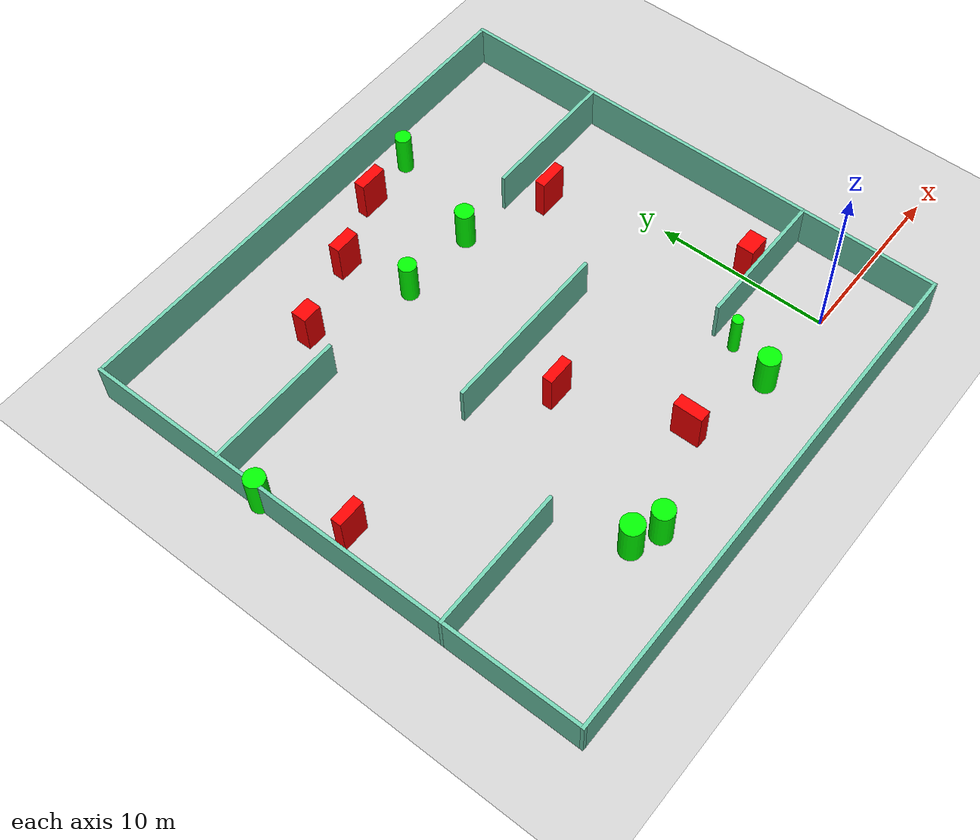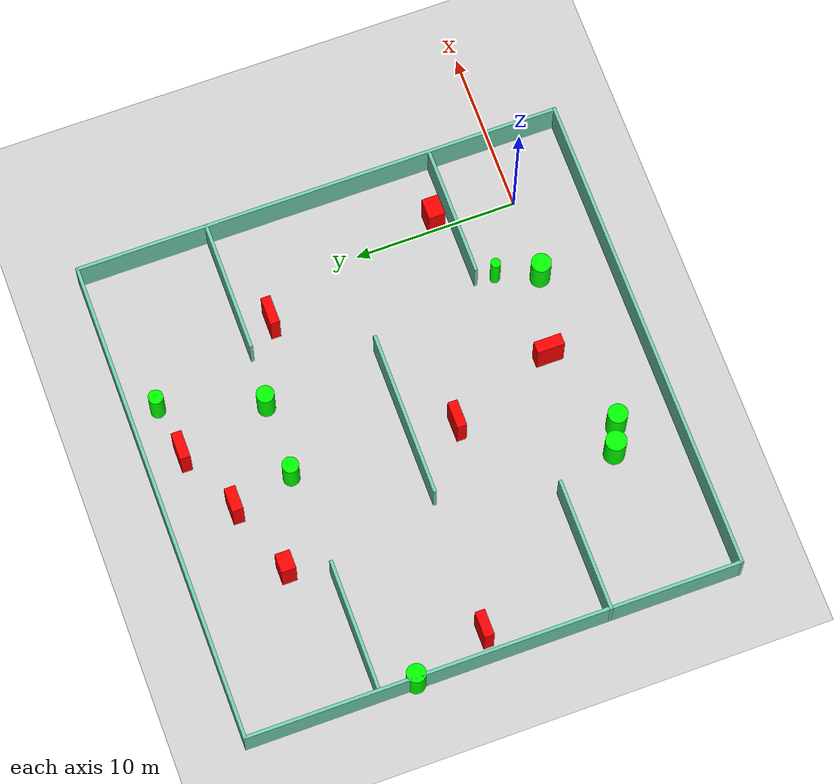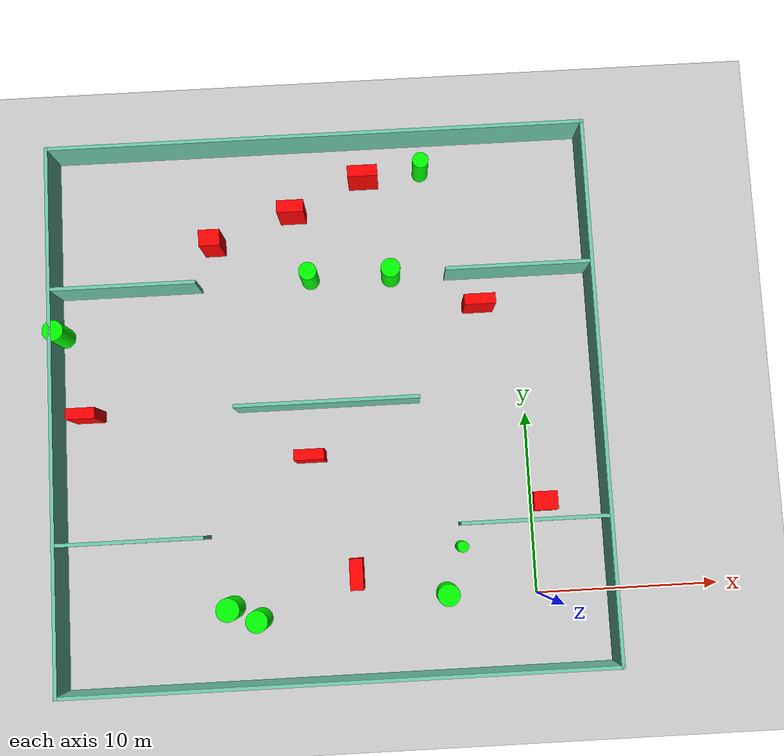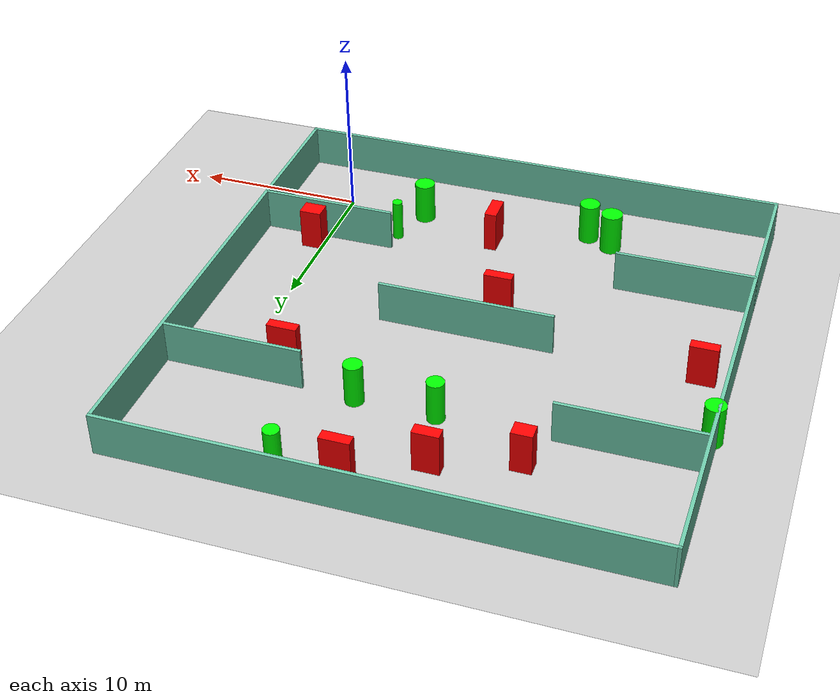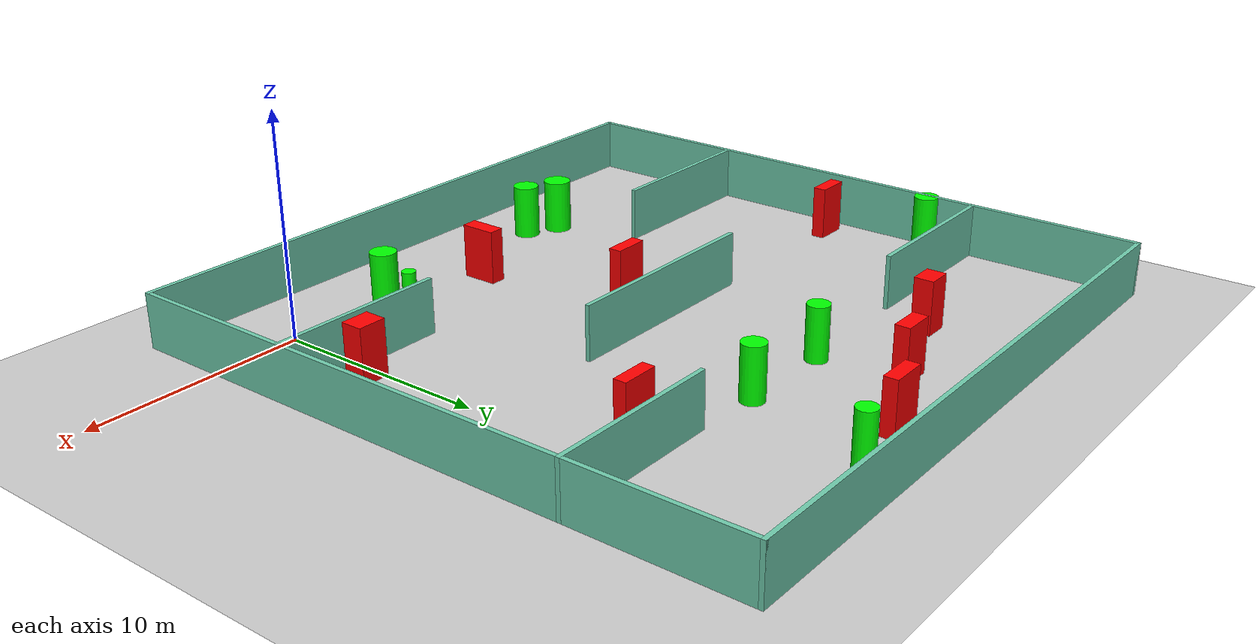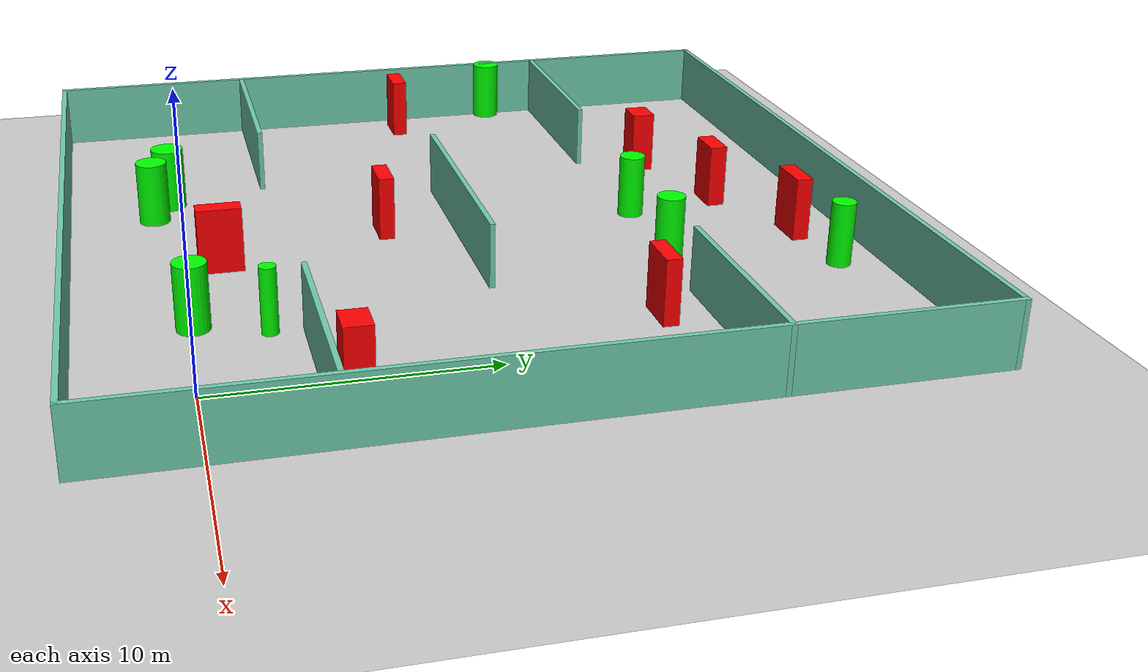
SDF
<sdf version="1.7">
 <world name="default">
  <light name="sun" type="directional">
   <pose>0 0 10 0 -0 0</pose>
   <diffuse>0.8 0.8 0.8 1</diffuse>
   <specular>0.2 0.2 0.2 1</specular>
   <attenuation>
    <range>1000</range>
    <constant>0.9</constant>
    <linear>0.01</linear>
    <quadratic>0.001</quadratic>
   </attenuation>
   <direction>-0.5 0.1 -0.9</direction>
   <spot><inner_angle>0</inner_angle><outer_angle>0</outer_angle><falloff>0</falloff></spot>
  </light>
  <model name="ground_plane">
   <static>1</static>
   <link name="link">
    <collision name="collision">
     <geometry><plane><normal>0 0 1</normal><size>100 100</size></plane></geometry>
     <surface>
      <contact><collide_bitmask>65535</collide_bitmask></contact>
      <friction><ode><mu>100</mu><mu2>50</mu2></ode></friction>
     </surface>
    </collision>
    <visual name="visual">
     <cast_shadows>0</cast_shadows>
     <geometry><plane><normal>0 0 1</normal><size>100 100</size></plane></geometry>
     <material>
      <script><uri>file://media/materials/scripts/gazebo.material</uri><name>Gazebo/Grey</name></script>
     </material>
    </visual>
   </link>
  </model>
  <gravity>0 0 -9.8</gravity>
  <magnetic_field>6e-06 2.3e-05 -4.2e-05</magnetic_field>
  <atmosphere type="adiabatic"/>
  <physics type="ode">
   <max_step_size>0.001</max_step_size>
   <real_time_factor>1</real_time_factor>
   <real_time_update_rate>1000</real_time_update_rate>
  </physics>
  <scene><ambient>0.4 0.4 0.4 1</ambient><background>0.7 0.7 0.7 1</background><shadows>1</shadows></scene>
  <spherical_coordinates>
   <surface_model>EARTH_WGS84</surface_model>
   <latitude_deg>0</latitude_deg>
   <longitude_deg>0</longitude_deg>
   <elevation>0</elevation>
   <heading_deg>0</heading_deg>
  </spherical_coordinates>
  <model name="my_base_walls">
   <link name="Wall_10">
    <collision name="Wall_10_Collision">
     <geometry><box><size>8.2 0.2 2.5</size></box></geometry>
     <pose>0 0 1.25 0 -0 0</pose>
    </collision>
    <visual name="Wall_10_Visual">
     <pose>0 0 1.25 0 -0 0</pose>
     <geometry><box><size>8.2 0.2 2.5</size></box></geometry>
     <material>
      <script><uri>file://media/materials/scripts/gazebo.material</uri><name>Gazebo/Grey</name></script>
      <ambient>0.435294 0.796078 0.67451 1</ambient>
     </material>
     <meta><layer>0</layer></meta>
    </visual>
    <pose>-11 -7 0 0 -0 0</pose>
   </link>
   <link name="Wall_12">
    <collision name="Wall_12_Collision">
     <geometry><box><size>8.2 0.2 2.5</size></box></geometry>
     <pose>0 0 1.25 0 -0 0</pose>
    </collision>
    <visual name="Wall_12_Visual">
     <pose>0 0 1.25 0 -0 0</pose>
     <geometry><box><size>8.2 0.2 2.5</size></box></geometry>
     <material>
      <script><uri>file://media/materials/scripts/gazebo.material</uri><name>Gazebo/Grey</name></script>
      <ambient>0.435294 0.796078 0.67451 1</ambient>
     </material>
     <meta><layer>0</layer></meta>
    </visual>
    <pose>-11 7 0 0 -0 0</pose>
   </link>
   <link name="Wall_14">
    <collision name="Wall_14_Collision">
     <geometry><box><size>8.2 0.2 2.5</size></box></geometry>
     <pose>0 0 1.25 0 -0 0</pose>
    </collision>
    <visual name="Wall_14_Visual">
     <pose>0 0 1.25 0 -0 0</pose>
     <geometry><box><size>8.2 0.2 2.5</size></box></geometry>
     <material>
      <script><uri>file://media/materials/scripts/gazebo.material</uri><name>Gazebo/Grey</name></script>
      <ambient>0.435294 0.796078 0.67451 1</ambient>
     </material>
     <meta><layer>0</layer></meta>
    </visual>
    <pose>11 7 0 0 -0 3.14159</pose>
   </link>
   <link name="Wall_16">
    <collision name="Wall_16_Collision">
     <geometry><box><size>10.2 0.2 2.5</size></box></geometry>
     <pose>0 0 1.25 0 -0 0</pose>
    </collision>
    <visual name="Wall_16_Visual">
     <pose>0 0 1.25 0 -0 0</pose>
     <geometry><box><size>10.2 0.2 2.5</size></box></geometry>
     <material>
      <script><uri>file://media/materials/scripts/gazebo.material</uri><name>Gazebo/Grey</name></script>
      <ambient>0.435294 0.796078 0.67451 1</ambient>
     </material>
     <meta><layer>0</layer></meta>
    </visual>
    <pose>0 0 0 0 -0 3.14159</pose>
   </link>
   <link name="Wall_2">
    <collision name="Wall_2_Collision">
     <geometry><box><size>30.2 0.2 2.5</size></box></geometry>
     <pose>0 0 1.25 0 -0 0</pose>
    </collision>
    <visual name="Wall_2_Visual">
     <pose>0 0 1.25 0 -0 0</pose>
     <geometry><box><size>30.2 0.2 2.5</size></box></geometry>
     <material>
      <script><uri>file://media/materials/scripts/gazebo.material</uri><name>Gazebo/Grey</name></script>
      <ambient>0.435294 0.796078 0.67451 1</ambient>
     </material>
     <meta><layer>0</layer></meta>
    </visual>
    <pose>0 -15 0 0 -0 3.14159</pose>
   </link>
   <link name="Wall_3">
    <collision name="Wall_3_Collision">
     <geometry><box><size>30.2 0.2 2.5</size></box></geometry>
     <pose>0 0 1.25 0 -0 0</pose>
    </collision>
    <visual name="Wall_3_Visual">
     <pose>0 0 1.25 0 -0 0</pose>
     <geometry><box><size>30.2 0.2 2.5</size></box></geometry>
     <material>
      <script><uri>file://media/materials/scripts/gazebo.material</uri><name>Gazebo/Grey</name></script>
      <ambient>0.435294 0.796078 0.67451 1</ambient>
     </material>
     <meta><layer>0</layer></meta>
    </visual>
    <pose>-15 0 0 0 -0 1.5708</pose>
   </link>
   <link name="Wall_4">
    <collision name="Wall_4_Collision">
     <geometry><box><size>30.2 0.2 2.5</size></box></geometry>
     <pose>0 0 1.25 0 -0 0</pose>
    </collision>
    <visual name="Wall_4_Visual">
     <pose>0 0 1.25 0 -0 0</pose>
     <geometry><box><size>30.2 0.2 2.5</size></box></geometry>
     <material>
      <script><uri>file://media/materials/scripts/gazebo.material</uri><name>Gazebo/Grey</name></script>
      <ambient>0.435294 0.796078 0.67451 1</ambient>
     </material>
     <meta><layer>0</layer></meta>
    </visual>
    <pose>0 15 0 0 -0 0</pose>
   </link>
   <link name="Wall_6">
    <collision name="Wall_6_Collision">
     <geometry><box><size>30.2 0.2 2.5</size></box></geometry>
     <pose>0 0 1.25 0 -0 0</pose>
    </collision>
    <visual name="Wall_6_Visual">
     <pose>0 0 1.25 0 -0 0</pose>
     <geometry><box><size>30.2 0.2 2.5</size></box></geometry>
     <material>
      <script><uri>file://media/materials/scripts/gazebo.material</uri><name>Gazebo/Grey</name></script>
      <ambient>0.435294 0.796078 0.67451 1</ambient>
     </material>
     <meta><layer>0</layer></meta>
    </visual>
    <pose>15 0 0 0 -0 1.5708</pose>
   </link>
   <link name="Wall_8">
    <collision name="Wall_8_Collision">
     <geometry><box><size>8.2 0.2 2.5</size></box></geometry>
     <pose>0 0 1.25 0 -0 0</pose>
    </collision>
    <visual name="Wall_8_Visual">
     <pose>0 0 1.25 0 -0 0</pose>
     <geometry><box><size>8.2 0.2 2.5</size></box></geometry>
     <material>
      <script><uri>file://media/materials/scripts/gazebo.material</uri><name>Gazebo/Grey</name></script>
      <ambient>0.435294 0.796078 0.67451 1</ambient>
     </material>
     <meta><layer>0</layer></meta>
    </visual>
    <pose>11 -7 0 0 -0 3.14159</pose>
   </link>
   <static>1</static>
   <pose>-11 11 0 0 -0 0</pose>
  </model>
  <model name="cylinder1">
   <static>1</static>
   <link name="link">
    <inertial>
     <mass>1</mass>
     <inertia><ixx>0.5</ixx><ixy>0</ixy><ixz>0</ixz><iyy>0.5</iyy><iyz>0</iyz><izz>1</izz></inertia>
    </inertial>
    <collision name="collision">
     <geometry><cylinder><radius>0.5025843332721927</radius><length>2.5</length></cylinder></geometry>
    </collision>
    <visual name="visual">
     <geometry><cylinder><radius>0.5025843332721927</radius><length>2.5</length></cylinder></geometry>
     <material>
      <ambient>0 1 0 1</ambient>
      <diffuse>0 1 0 1</diffuse>
      <specular>0.1 0.1 0.1 1</specular>
      <emissive>0 0 0 0</emissive>
     </material>
    </visual>
   </link>
   <pose>-11.709365593727696 18.263992951538377 1.25 0 0 0</pose>
  </model>
  <model name="cylinder2">
   <static>1</static>
   <link name="link">
    <inertial>
     <mass>1</mass>
     <inertia><ixx>0.5</ixx><ixy>0</ixy><ixz>0</ixz><iyy>0.5</iyy><iyz>0</iyz><izz>1</izz></inertia>
    </inertial>
    <collision name="collision">
     <geometry><cylinder><radius>0.45324247677858853</radius><length>2.5</length></cylinder></geometry>
    </collision>
    <visual name="visual">
     <geometry><cylinder><radius>0.45324247677858853</radius><length>2.5</length></cylinder></geometry>
     <material>
      <ambient>0 1 0 1</ambient>
      <diffuse>0 1 0 1</diffuse>
      <specular>0.1 0.1 0.1 1</specular>
      <emissive>0 0 0 0</emissive>
     </material>
    </visual>
   </link>
   <pose>-5.127726055957243 24.23285457015207 1.25 0 0 0</pose>
  </model>
  <model name="cylinder3">
   <static>1</static>
   <link name="link">
    <inertial>
     <mass>1</mass>
     <inertia><ixx>0.5</ixx><ixy>0</ixy><ixz>0</ixz><iyy>0.5</iyy><iyz>0</iyz><izz>1</izz></inertia>
    </inertial>
    <collision name="collision">
     <geometry><cylinder><radius>0.3076221585282013</radius><length>2.5</length></cylinder></geometry>
    </collision>
    <visual name="visual">
     <geometry><cylinder><radius>0.3076221585282013</radius><length>2.5</length></cylinder></geometry>
     <material>
      <ambient>0 1 0 1</ambient>
      <diffuse>0 1 0 1</diffuse>
      <specular>0.1 0.1 0.1 1</specular>
      <emissive>0 0 0 0</emissive>
     </material>
    </visual>
   </link>
   <pose>-4.062240717565091 2.7639442446165914 1.25 0 0 0</pose>
  </model>
  <model name="cylinder4">
   <static>1</static>
   <link name="link">
    <inertial>
     <mass>1</mass>
     <inertia><ixx>0.5</ixx><ixy>0</ixy><ixz>0</ixz><iyy>0.5</iyy><iyz>0</iyz><izz>1</izz></inertia>
    </inertial>
    <collision name="collision">
     <geometry><cylinder><radius>0.6394744283612109</radius><length>2.5</length></cylinder></geometry>
    </collision>
    <visual name="visual">
     <geometry><cylinder><radius>0.6394744283612109</radius><length>2.5</length></cylinder></geometry>
     <material>
      <ambient>0 1 0 1</ambient>
      <diffuse>0 1 0 1</diffuse>
      <specular>0.1 0.1 0.1 1</specular>
      <emissive>0 0 0 0</emissive>
     </material>
    </visual>
   </link>
   <pose>-16.775364670342665 0.09942757251302137 1.25 0 0 0</pose>
  </model>
  <model name="cylinder5">
   <static>1</static>
   <link name="link">
    <inertial>
     <mass>1</mass>
     <inertia><ixx>0.5</ixx><ixy>0</ixy><ixz>0</ixz><iyy>0.5</iyy><iyz>0</iyz><izz>1</izz></inertia>
    </inertial>
    <collision name="collision">
     <geometry><cylinder><radius>0.5801251427338164</radius><length>2.5</length></cylinder></geometry>
    </collision>
    <visual name="visual">
     <geometry><cylinder><radius>0.5801251427338164</radius><length>2.5</length></cylinder></geometry>
     <material>
      <ambient>0 1 0 1</ambient>
      <diffuse>0 1 0 1</diffuse>
      <specular>0.1 0.1 0.1 1</specular>
      <emissive>0 0 0 0</emissive>
     </material>
    </visual>
   </link>
   <pose>-25.80182586471577 15.70002705984287 1.25 0 0 0</pose>
  </model>
  <model name="cylinder6">
   <static>1</static>
   <link name="link">
    <inertial>
     <mass>1</mass>
     <inertia><ixx>0.5</ixx><ixy>0</ixy><ixz>0</ixz><iyy>0.5</iyy><iyz>0</iyz><izz>1</izz></inertia>
    </inertial>
    <collision name="collision">
     <geometry><cylinder><radius>0.6068002221123718</radius><length>2.5</length></cylinder></geometry>
    </collision>
    <visual name="visual">
     <geometry><cylinder><radius>0.6068002221123718</radius><length>2.5</length></cylinder></geometry>
     <material>
      <ambient>0 1 0 1</ambient>
      <diffuse>0 1 0 1</diffuse>
      <specular>0.1 0.1 0.1 1</specular>
      <emissive>0 0 0 0</emissive>
     </material>
    </visual>
   </link>
   <pose>-4.967960320447027 0.24070485610540926 1.25 0 0 0</pose>
  </model>
  <model name="cylinder7">
   <static>1</static>
   <link name="link">
    <inertial>
     <mass>1</mass>
     <inertia><ixx>0.5</ixx><ixy>0</ixy><ixz>0</ixz><iyy>0.5</iyy><iyz>0</iyz><izz>1</izz></inertia>
    </inertial>
    <collision name="collision">
     <geometry><cylinder><radius>0.5392247772167105</radius><length>2.5</length></cylinder></geometry>
    </collision>
    <visual name="visual">
     <geometry><cylinder><radius>0.5392247772167105</radius><length>2.5</length></cylinder></geometry>
     <material>
      <ambient>0 1 0 1</ambient>
      <diffuse>0 1 0 1</diffuse>
      <specular>0.1 0.1 0.1 1</specular>
      <emissive>0 0 0 0</emissive>
     </material>
    </visual>
   </link>
   <pose>-7.12627367507929 18.201530924506763 1.25 0 0 0</pose>
  </model>
  <model name="cylinder8">
   <static>1</static>
   <link name="link">
    <inertial>
     <mass>1</mass>
     <inertia><ixx>0.5</ixx><ixy>0</ixy><ixz>0</ixz><iyy>0.5</iyy><iyz>0</iyz><izz>1</izz></inertia>
    </inertial>
    <collision name="collision">
     <geometry><cylinder><radius>0.6034600356890059</radius><length>2.5</length></cylinder></geometry>
    </collision>
    <visual name="visual">
     <geometry><cylinder><radius>0.6034600356890059</radius><length>2.5</length></cylinder></geometry>
     <material>
      <ambient>0 1 0 1</ambient>
      <diffuse>0 1 0 1</diffuse>
      <specular>0.1 0.1 0.1 1</specular>
      <emissive>0 0 0 0</emissive>
     </material>
    </visual>
   </link>
   <pose>-15.249362027202714 -0.5924754384041901 1.25 0 0 0</pose>
  </model>
  <model name="box1">
   <static>1</static>
   <link name="link">
    <inertial>
     <mass>1</mass>
     <inertia><ixx>0.083</ixx><ixy>0</ixy><ixz>0</ixz><iyy>0.083</iyy><iyz>0</iyz><izz>0.083</izz></inertia>
    </inertial>
    <collision name="collision">
     <geometry><box><size>1.2958192521934961 1.0114937764604615 2.5</size></box></geometry>
    </collision>
    <visual name="visual">
     <geometry><box><size>1.2958192521934961 1.0114937764604615 2.5</size></box></geometry>
     <material>
      <ambient>1 0 0 1</ambient>
      <diffuse>1 0 0 1</diffuse>
      <specular>0.1 0.1 0.1 1</specular>
      <emissive>0 0 0 0</emissive>
     </material>
    </visual>
    <sensor name="my_contact" type="contact">
     <contact><collision>box_collision</collision><topic>__default_topic__</topic></contact>
    </sensor>
   </link>
   <pose>0.5391170728641264 4.978503954861123 1.25 0 0 0</pose>
  </model>
  <model name="box2">
   <static>1</static>
   <link name="link">
    <inertial>
     <mass>1</mass>
     <inertia><ixx>0.083</ixx><ixy>0</ixy><ixz>0</ixz><iyy>0.083</iyy><iyz>0</iyz><izz>0.083</izz></inertia>
    </inertial>
    <collision name="collision">
     <geometry><box><size>1.6802591622487 0.6352481785161622 2.5</size></box></geometry>
    </collision>
    <visual name="visual">
     <geometry><box><size>1.6802591622487 0.6352481785161622 2.5</size></box></geometry>
     <material>
      <ambient>1 0 0 1</ambient>
      <diffuse>1 0 0 1</diffuse>
      <specular>0.1 0.1 0.1 1</specular>
      <emissive>0 0 0 0</emissive>
     </material>
    </visual>
    <sensor name="my_contact" type="contact">
     <contact><collision>box_collision</collision><topic>__default_topic__</topic></contact>
    </sensor>
   </link>
   <pose>-8.406966151695078 23.8112467158229 1.25 0 0 0</pose>
  </model>
  <model name="box3">
   <static>1</static>
   <link name="link">
    <inertial>
     <mass>1</mass>
     <inertia><ixx>0.083</ixx><ixy>0</ixy><ixz>0</ixz><iyy>0.083</iyy><iyz>0</iyz><izz>0.083</izz></inertia>
    </inertial>
    <collision name="collision">
     <geometry><box><size>1.6466594187087702 0.5966602184504548 2.5</size></box></geometry>
    </collision>
    <visual name="visual">
     <geometry><box><size>1.6466594187087702 0.5966602184504548 2.5</size></box></geometry>
     <material>
      <ambient>1 0 0 1</ambient>
      <diffuse>1 0 0 1</diffuse>
      <specular>0.1 0.1 0.1 1</specular>
      <emissive>0 0 0 0</emissive>
     </material>
    </visual>
    <sensor name="my_contact" type="contact">
     <contact><collision>box_collision</collision><topic>__default_topic__</topic></contact>
    </sensor>
   </link>
   <pose>-12.0900177183539 8.148757913996763 1.25 0 0 0</pose>
  </model>
  <model name="box4">
   <static>1</static>
   <link name="link">
    <inertial>
     <mass>1</mass>
     <inertia><ixx>0.083</ixx><ixy>0</ixy><ixz>0</ixz><iyy>0.083</iyy><iyz>0</iyz><izz>0.083</izz></inertia>
    </inertial>
    <collision name="collision">
     <geometry><box><size>0.72262998567089 1.6835338813109655 2.5</size></box></geometry>
    </collision>
    <visual name="visual">
     <geometry><box><size>0.72262998567089 1.6835338813109655 2.5</size></box></geometry>
     <material>
      <ambient>1 0 0 1</ambient>
      <diffuse>1 0 0 1</diffuse>
      <specular>0.1 0.1 0.1 1</specular>
      <emissive>0 0 0 0</emissive>
     </material>
    </visual>
    <sensor name="my_contact" type="contact">
     <contact><collision>box_collision</collision><topic>__default_topic__</topic></contact>
    </sensor>
   </link>
   <pose>-9.843000374936372 1.598672409405994 1.25 0 0 0</pose>
  </model>
  <model name="box5">
   <static>1</static>
   <link name="link">
    <inertial>
     <mass>1</mass>
     <inertia><ixx>0.083</ixx><ixy>0</ixy><ixz>0</ixz><iyy>0.083</iyy><iyz>0</iyz><izz>0.083</izz></inertia>
    </inertial>
    <collision name="collision">
     <geometry><box><size>1.4945521614850765 0.6859558741932729 2.5</size></box></geometry>
    </collision>
    <visual name="visual">
     <geometry><box><size>1.4945521614850765 0.6859558741932729 2.5</size></box></geometry>
     <material>
      <ambient>1 0 0 1</ambient>
      <diffuse>1 0 0 1</diffuse>
      <specular>0.1 0.1 0.1 1</specular>
      <emissive>0 0 0 0</emissive>
     </material>
    </visual>
    <sensor name="my_contact" type="contact">
     <contact><collision>box_collision</collision><topic>__default_topic__</topic></contact>
    </sensor>
   </link>
   <pose>-12.527183908176898 22.000437669829463 1.25 0 0 0</pose>
  </model>
  <model name="box6">
   <static>1</static>
   <link name="link">
    <inertial>
     <mass>1</mass>
     <inertia><ixx>0.083</ixx><ixy>0</ixy><ixz>0</ixz><iyy>0.083</iyy><iyz>0</iyz><izz>0.083</izz></inertia>
    </inertial>
    <collision name="collision">
     <geometry><box><size>1.7297285291309148 0.5888896983598317 2.5</size></box></geometry>
    </collision>
    <visual name="visual">
     <geometry><box><size>1.7297285291309148 0.5888896983598317 2.5</size></box></geometry>
     <material>
      <ambient>1 0 0 1</ambient>
      <diffuse>1 0 0 1</diffuse>
      <specular>0.1 0.1 0.1 1</specular>
      <emissive>0 0 0 0</emissive>
     </material>
    </visual>
    <sensor name="my_contact" type="contact">
     <contact><collision>box_collision</collision><topic>__default_topic__</topic></contact>
    </sensor>
   </link>
   <pose>-2.3074906821253194 16.199280083839863 1.25 0 0 0</pose>
  </model>
  <model name="box7">
   <static>1</static>
   <link name="link">
    <inertial>
     <mass>1</mass>
     <inertia><ixx>0.083</ixx><ixy>0</ixy><ixz>0</ixz><iyy>0.083</iyy><iyz>0</iyz><izz>0.083</izz></inertia>
    </inertial>
    <collision name="collision">
     <geometry><box><size>1.5934091826342802 0.6078750508675068 2.5</size></box></geometry>
    </collision>
    <visual name="visual">
     <geometry><box><size>1.5934091826342802 0.6078750508675068 2.5</size></box></geometry>
     <material>
      <ambient>1 0 0 1</ambient>
      <diffuse>1 0 0 1</diffuse>
      <specular>0.1 0.1 0.1 1</specular>
      <emissive>0 0 0 0</emissive>
     </material>
    </visual>
    <sensor name="my_contact" type="contact">
     <contact><collision>box_collision</collision><topic>__default_topic__</topic></contact>
    </sensor>
   </link>
   <pose>-24.399589952914475 11.056898552002071 1.25 0 0 0</pose>
  </model>
  <model name="box8">
   <static>1</static>
   <link name="link">
    <inertial>
     <mass>1</mass>
     <inertia><ixx>0.083</ixx><ixy>0</ixy><ixz>0</ixz><iyy>0.083</iyy><iyz>0</iyz><izz>0.083</izz></inertia>
    </inertial>
    <collision name="collision">
     <geometry><box><size>1.1687626652124028 0.9056774583886 2.5</size></box></geometry>
    </collision>
    <visual name="visual">
     <geometry><box><size>1.1687626652124028 0.9056774583886 2.5</size></box></geometry>
     <material>
      <ambient>1 0 0 1</ambient>
      <diffuse>1 0 0 1</diffuse>
      <specular>0.1 0.1 0.1 1</specular>
      <emissive>0 0 0 0</emissive>
     </material>
    </visual>
    <sensor name="my_contact" type="contact">
     <contact><collision>box_collision</collision><topic>__default_topic__</topic></contact>
    </sensor>
   </link>
   <pose>-17.06691645939831 20.448160334169664 1.25 0 0 0</pose>
  </model>
 </world>
</sdf>
